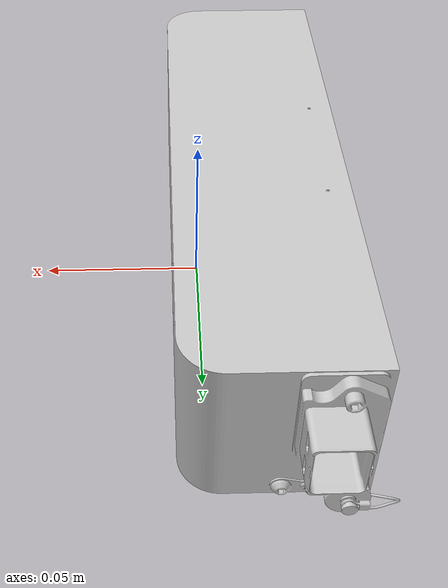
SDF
<?xml version="1.0" ?>
<sdf version="1.5">
	<model name="ensenso_n35_sensor">
		<static>1</static>
		<pose>0 0 0.025 0 0 0</pose>
		<link name="link">
			<inertial>
				<mass>0.1</mass>
			</inertial>
			<collision name="collision">
				<pose>-0.02 0.008 0 0 0 0</pose>
				<geometry>
					<box>
						<size>0.0566 0.1918 0.05</size>
					</box>
				</geometry>
			</collision>
			<visual name="visual">
				<transparency>0</transparency>
				<geometry>
					<mesh>
						<uri>model://ensenso_n35_sensor/meshes/ensenso_n35_sensor.stl</uri>
					</mesh>
				</geometry>
				<material>
					<script>
						<name>SensorPlacementOptimization/LightGray</name>
						<uri>file://materials/sensor_placement_optimization.material</uri>
					</script>
				</material>
			</visual>
			<sensor name="sensor" type="depth">
				<update_rate>10</update_rate>
				<camera>
					<horizontal_fov>1.01229</horizontal_fov>
					<image>
						<width>1280</width>
						<height>1024</height>
						<format>B8G8R8</format>
					</image>
					<clip>
						<near>0.46</near>
						<far>4.0</far>
					</clip>
				</camera>
			</sensor>
		</link>
	</model>
</sdf>
